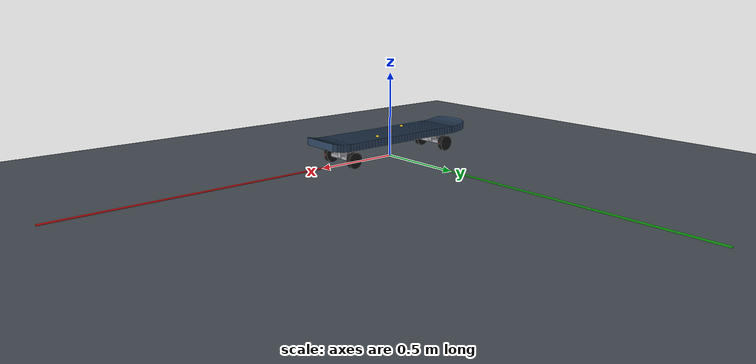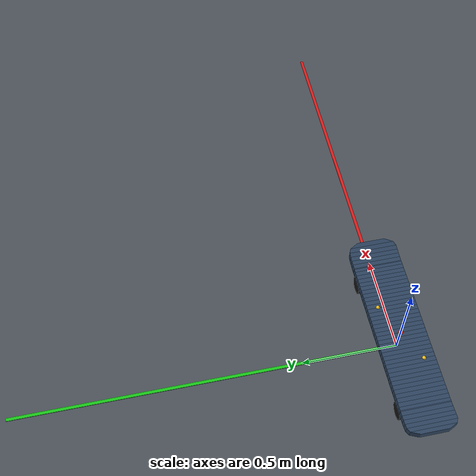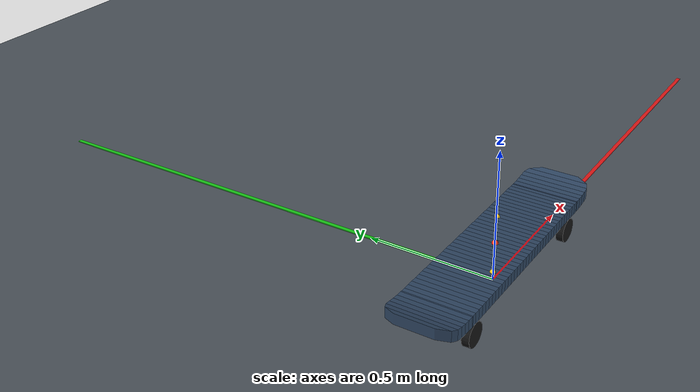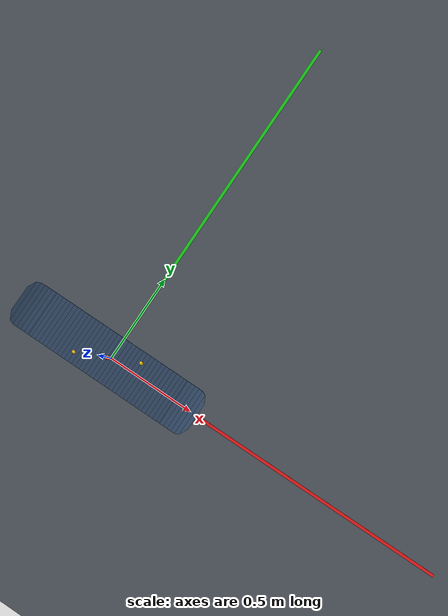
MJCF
<mujoco model="skate-sim-board-downhill-truck">
      <compiler angle="radian" coordinate="local"/>
      <option gravity="0 0 -9.81" integrator="implicitfast" timestep=".002"/>
      <visual><headlight diffuse=".8 .8 .8" ambient=".35 .35 .35"/></visual>
      <asset>
        <mesh name="deck_strip_0" vertex="-0.54 -0.0725000007 0.001 -0.54 -0.0725000007 0.043 -0.54 0.0725000007 0.001 -0.54 0.0725000007 0.043 -0.5175 -0.116870598 -0.00550318878 -0.5175 -0.116870598 0.0364968112 -0.5175 0.116870598 -0.00550318878 -0.5175 0.116870598 0.0364968112"/><mesh name="deck_strip_1" vertex="-0.5175 -0.116870598 -0.00550318878 -0.5175 -0.116870598 0.0364968112 -0.5175 0.116870598 -0.00550318878 -0.5175 0.116870598 0.0364968112 -0.495 -0.126583269 -0.010869898 -0.495 -0.126583269 0.031130102 -0.495 0.126583269 -0.010869898 -0.495 0.126583269 0.031130102"/><mesh name="deck_strip_2" vertex="-0.495 -0.126583269 -0.010869898 -0.495 -0.126583269 0.031130102 -0.495 0.126583269 -0.010869898 -0.495 0.126583269 0.031130102 -0.4725 -0.1275 -0.0151001276 -0.4725 -0.1275 0.0268998724 -0.4725 0.1275 -0.0151001276 -0.4725 0.1275 0.0268998724"/><mesh name="deck_strip_3" vertex="-0.4725 -0.1275 -0.0151001276 -0.4725 -0.1275 0.0268998724 -0.4725 0.1275 -0.0151001276 -0.4725 0.1275 0.0268998724 -0.45 -0.1275 -0.0181938776 -0.45 -0.1275 0.0238061224 -0.45 0.1275 -0.0181938776 -0.45 0.1275 0.0238061224"/><mesh name="deck_strip_4" vertex="-0.45 -0.1275 -0.0181938776 -0.45 -0.1275 0.0238061224 -0.45 0.1275 -0.0181938776 -0.45 0.1275 0.0238061224 -0.4275 -0.1275 -0.020151148 -0.4275 -0.1275 0.021848852 -0.4275 0.1275 -0.020151148 -0.4275 0.1275 0.021848852"/><mesh name="deck_strip_5" vertex="-0.4275 -0.1275 -0.020151148 -0.4275 -0.1275 0.021848852 -0.4275 0.1275 -0.020151148 -0.4275 0.1275 0.021848852 -0.405 -0.1275 -0.0209719388 -0.405 -0.1275 0.0210280612 -0.405 0.1275 -0.0209719388 -0.405 0.1275 0.0210280612"/><mesh name="deck_strip_6" vertex="-0.405 -0.1275 -0.0209719388 -0.405 -0.1275 0.0210280612 -0.405 0.1275 -0.0209719388 -0.405 0.1275 0.0210280612 -0.4 -0.1275 -0.021 -0.4 -0.1275 0.021 -0.4 0.1275 -0.021 -0.4 0.1275 0.021"/><mesh name="deck_strip_7" vertex="-0.4 -0.1275 -0.021 -0.4 -0.1275 0.021 -0.4 0.1275 -0.021 -0.4 0.1275 0.021 -0.3825 -0.1275 -0.021 -0.3825 -0.1275 0.021 -0.3825 0.1275 -0.021 -0.3825 0.1275 0.021"/><mesh name="deck_strip_8" vertex="-0.3825 -0.1275 -0.021 -0.3825 -0.1275 0.021 -0.3825 0.1275 -0.021 -0.3825 0.1275 0.021 -0.36 -0.1275 -0.021 -0.36 -0.1275 0.021 -0.36 0.1275 -0.021 -0.36 0.1275 0.021"/><mesh name="deck_strip_9" vertex="-0.36 -0.1275 -0.021 -0.36 -0.1275 0.021 -0.36 0.1275 -0.021 -0.36 0.1275 0.021 -0.3375 -0.1275 -0.021 -0.3375 -0.1275 0.021 -0.3375 0.1275 -0.021 -0.3375 0.1275 0.021"/><mesh name="deck_strip_10" vertex="-0.3375 -0.1275 -0.021 -0.3375 -0.1275 0.021 -0.3375 0.1275 -0.021 -0.3375 0.1275 0.021 -0.315 -0.1275 -0.021 -0.315 -0.1275 0.021 -0.315 0.1275 -0.021 -0.315 0.1275 0.021"/><mesh name="deck_strip_11" vertex="-0.315 -0.1275 -0.021 -0.315 -0.1275 0.021 -0.315 0.1275 -0.021 -0.315 0.1275 0.021 -0.2925 -0.1275 -0.021 -0.2925 -0.1275 0.021 -0.2925 0.1275 -0.021 -0.2925 0.1275 0.021"/><mesh name="deck_strip_12" vertex="-0.2925 -0.1275 -0.021 -0.2925 -0.1275 0.021 -0.2925 0.1275 -0.021 -0.2925 0.1275 0.021 -0.27 -0.1275 -0.021 -0.27 -0.1275 0.021 -0.27 0.1275 -0.021 -0.27 0.1275 0.021"/><mesh name="deck_strip_13" vertex="-0.27 -0.1275 -0.021 -0.27 -0.1275 0.021 -0.27 0.1275 -0.021 -0.27 0.1275 0.021 -0.2475 -0.1275 -0.021 -0.2475 -0.1275 0.021 -0.2475 0.1275 -0.021 -0.2475 0.1275 0.021"/><mesh name="deck_strip_14" vertex="-0.2475 -0.1275 -0.021 -0.2475 -0.1275 0.021 -0.2475 0.1275 -0.021 -0.2475 0.1275 0.021 -0.225 -0.1275 -0.021 -0.225 -0.1275 0.021 -0.225 0.1275 -0.021 -0.225 0.1275 0.021"/><mesh name="deck_strip_15" vertex="-0.225 -0.1275 -0.021 -0.225 -0.1275 0.021 -0.225 0.1275 -0.021 -0.225 0.1275 0.021 -0.2025 -0.1275 -0.021 -0.2025 -0.1275 0.021 -0.2025 0.1275 -0.021 -0.2025 0.1275 0.021"/><mesh name="deck_strip_16" vertex="-0.2025 -0.1275 -0.021 -0.2025 -0.1275 0.021 -0.2025 0.1275 -0.021 -0.2025 0.1275 0.021 -0.18 -0.1275 -0.021 -0.18 -0.1275 0.021 -0.18 0.1275 -0.021 -0.18 0.1275 0.021"/><mesh name="deck_strip_17" vertex="-0.18 -0.1275 -0.021 -0.18 -0.1275 0.021 -0.18 0.1275 -0.021 -0.18 0.1275 0.021 -0.1575 -0.1275 -0.021 -0.1575 -0.1275 0.021 -0.1575 0.1275 -0.021 -0.1575 0.1275 0.021"/><mesh name="deck_strip_18" vertex="-0.1575 -0.1275 -0.021 -0.1575 -0.1275 0.021 -0.1575 0.1275 -0.021 -0.1575 0.1275 0.021 -0.135 -0.1275 -0.021 -0.135 -0.1275 0.021 -0.135 0.1275 -0.021 -0.135 0.1275 0.021"/><mesh name="deck_strip_19" vertex="-0.135 -0.1275 -0.021 -0.135 -0.1275 0.021 -0.135 0.1275 -0.021 -0.135 0.1275 0.021 -0.1125 -0.1275 -0.021 -0.1125 -0.1275 0.021 -0.1125 0.1275 -0.021 -0.1125 0.1275 0.021"/><mesh name="deck_strip_20" vertex="-0.1125 -0.1275 -0.021 -0.1125 -0.1275 0.021 -0.1125 0.1275 -0.021 -0.1125 0.1275 0.021 -0.09 -0.1275 -0.021 -0.09 -0.1275 0.021 -0.09 0.1275 -0.021 -0.09 0.1275 0.021"/><mesh name="deck_strip_21" vertex="-0.09 -0.1275 -0.021 -0.09 -0.1275 0.021 -0.09 0.1275 -0.021 -0.09 0.1275 0.021 -0.0675 -0.1275 -0.021 -0.0675 -0.1275 0.021 -0.0675 0.1275 -0.021 -0.0675 0.1275 0.021"/><mesh name="deck_strip_22" vertex="-0.0675 -0.1275 -0.021 -0.0675 -0.1275 0.021 -0.0675 0.1275 -0.021 -0.0675 0.1275 0.021 -0.045 -0.1275 -0.021 -0.045 -0.1275 0.021 -0.045 0.1275 -0.021 -0.045 0.1275 0.021"/><mesh name="deck_strip_23" vertex="-0.045 -0.1275 -0.021 -0.045 -0.1275 0.021 -0.045 0.1275 -0.021 -0.045 0.1275 0.021 -0.0225 -0.1275 -0.021 -0.0225 -0.1275 0.021 -0.0225 0.1275 -0.021 -0.0225 0.1275 0.021"/><mesh name="deck_strip_24" vertex="-0.0225 -0.1275 -0.021 -0.0225 -0.1275 0.021 -0.0225 0.1275 -0.021 -0.0225 0.1275 0.021 0 -0.1275 -0.021 0 -0.1275 0.021 0 0.1275 -0.021 0 0.1275 0.021"/><mesh name="deck_strip_25" vertex="0 -0.1275 -0.021 0 -0.1275 0.021 0 0.1275 -0.021 0 0.1275 0.021 0.0225 -0.1275 -0.021 0.0225 -0.1275 0.021 0.0225 0.1275 -0.021 0.0225 0.1275 0.021"/><mesh name="deck_strip_26" vertex="0.0225 -0.1275 -0.021 0.0225 -0.1275 0.021 0.0225 0.1275 -0.021 0.0225 0.1275 0.021 0.045 -0.1275 -0.021 0.045 -0.1275 0.021 0.045 0.1275 -0.021 0.045 0.1275 0.021"/><mesh name="deck_strip_27" vertex="0.045 -0.1275 -0.021 0.045 -0.1275 0.021 0.045 0.1275 -0.021 0.045 0.1275 0.021 0.0675 -0.1275 -0.021 0.0675 -0.1275 0.021 0.0675 0.1275 -0.021 0.0675 0.1275 0.021"/><mesh name="deck_strip_28" vertex="0.0675 -0.1275 -0.021 0.0675 -0.1275 0.021 0.0675 0.1275 -0.021 0.0675 0.1275 0.021 0.09 -0.1275 -0.021 0.09 -0.1275 0.021 0.09 0.1275 -0.021 0.09 0.1275 0.021"/><mesh name="deck_strip_29" vertex="0.09 -0.1275 -0.021 0.09 -0.1275 0.021 0.09 0.1275 -0.021 0.09 0.1275 0.021 0.1125 -0.1275 -0.021 0.1125 -0.1275 0.021 0.1125 0.1275 -0.021 0.1125 0.1275 0.021"/><mesh name="deck_strip_30" vertex="0.1125 -0.1275 -0.021 0.1125 -0.1275 0.021 0.1125 0.1275 -0.021 0.1125 0.1275 0.021 0.135 -0.1275 -0.021 0.135 -0.1275 0.021 0.135 0.1275 -0.021 0.135 0.1275 0.021"/><mesh name="deck_strip_31" vertex="0.135 -0.1275 -0.021 0.135 -0.1275 0.021 0.135 0.1275 -0.021 0.135 0.1275 0.021 0.1575 -0.1275 -0.021 0.1575 -0.1275 0.021 0.1575 0.1275 -0.021 0.1575 0.1275 0.021"/><mesh name="deck_strip_32" vertex="0.1575 -0.1275 -0.021 0.1575 -0.1275 0.021 0.1575 0.1275 -0.021 0.1575 0.1275 0.021 0.18 -0.1275 -0.021 0.18 -0.1275 0.021 0.18 0.1275 -0.021 0.18 0.1275 0.021"/><mesh name="deck_strip_33" vertex="0.18 -0.1275 -0.021 0.18 -0.1275 0.021 0.18 0.1275 -0.021 0.18 0.1275 0.021 0.2025 -0.1275 -0.021 0.2025 -0.1275 0.021 0.2025 0.1275 -0.021 0.2025 0.1275 0.021"/><mesh name="deck_strip_34" vertex="0.2025 -0.1275 -0.021 0.2025 -0.1275 0.021 0.2025 0.1275 -0.021 0.2025 0.1275 0.021 0.225 -0.1275 -0.021 0.225 -0.1275 0.021 0.225 0.1275 -0.021 0.225 0.1275 0.021"/><mesh name="deck_strip_35" vertex="0.225 -0.1275 -0.021 0.225 -0.1275 0.021 0.225 0.1275 -0.021 0.225 0.1275 0.021 0.2475 -0.1275 -0.021 0.2475 -0.1275 0.021 0.2475 0.1275 -0.021 0.2475 0.1275 0.021"/><mesh name="deck_strip_36" vertex="0.2475 -0.1275 -0.021 0.2475 -0.1275 0.021 0.2475 0.1275 -0.021 0.2475 0.1275 0.021 0.27 -0.1275 -0.021 0.27 -0.1275 0.021 0.27 0.1275 -0.021 0.27 0.1275 0.021"/><mesh name="deck_strip_37" vertex="0.27 -0.1275 -0.021 0.27 -0.1275 0.021 0.27 0.1275 -0.021 0.27 0.1275 0.021 0.2925 -0.1275 -0.021 0.2925 -0.1275 0.021 0.2925 0.1275 -0.021 0.2925 0.1275 0.021"/><mesh name="deck_strip_38" vertex="0.2925 -0.1275 -0.021 0.2925 -0.1275 0.021 0.2925 0.1275 -0.021 0.2925 0.1275 0.021 0.315 -0.1275 -0.021 0.315 -0.1275 0.021 0.315 0.1275 -0.021 0.315 0.1275 0.021"/><mesh name="deck_strip_39" vertex="0.315 -0.1275 -0.021 0.315 -0.1275 0.021 0.315 0.1275 -0.021 0.315 0.1275 0.021 0.3375 -0.1275 -0.021 0.3375 -0.1275 0.021 0.3375 0.1275 -0.021 0.3375 0.1275 0.021"/><mesh name="deck_strip_40" vertex="0.3375 -0.1275 -0.021 0.3375 -0.1275 0.021 0.3375 0.1275 -0.021 0.3375 0.1275 0.021 0.36 -0.1275 -0.021 0.36 -0.1275 0.021 0.36 0.1275 -0.021 0.36 0.1275 0.021"/><mesh name="deck_strip_41" vertex="0.36 -0.1275 -0.021 0.36 -0.1275 0.021 0.36 0.1275 -0.021 0.36 0.1275 0.021 0.3825 -0.1275 -0.021 0.3825 -0.1275 0.021 0.3825 0.1275 -0.021 0.3825 0.1275 0.021"/><mesh name="deck_strip_42" vertex="0.3825 -0.1275 -0.021 0.3825 -0.1275 0.021 0.3825 0.1275 -0.021 0.3825 0.1275 0.021 0.4 -0.1275 -0.021 0.4 -0.1275 0.021 0.4 0.1275 -0.021 0.4 0.1275 0.021"/><mesh name="deck_strip_43" vertex="0.4 -0.1275 -0.021 0.4 -0.1275 0.021 0.4 0.1275 -0.021 0.4 0.1275 0.021 0.405 -0.1275 -0.0209719388 0.405 -0.1275 0.0210280612 0.405 0.1275 -0.0209719388 0.405 0.1275 0.0210280612"/><mesh name="deck_strip_44" vertex="0.405 -0.1275 -0.0209719388 0.405 -0.1275 0.0210280612 0.405 0.1275 -0.0209719388 0.405 0.1275 0.0210280612 0.4275 -0.1275 -0.020151148 0.4275 -0.1275 0.021848852 0.4275 0.1275 -0.020151148 0.4275 0.1275 0.021848852"/><mesh name="deck_strip_45" vertex="0.4275 -0.1275 -0.020151148 0.4275 -0.1275 0.021848852 0.4275 0.1275 -0.020151148 0.4275 0.1275 0.021848852 0.45 -0.1275 -0.0181938776 0.45 -0.1275 0.0238061224 0.45 0.1275 -0.0181938776 0.45 0.1275 0.0238061224"/><mesh name="deck_strip_46" vertex="0.45 -0.1275 -0.0181938776 0.45 -0.1275 0.0238061224 0.45 0.1275 -0.0181938776 0.45 0.1275 0.0238061224 0.4725 -0.1275 -0.0151001276 0.4725 -0.1275 0.0268998724 0.4725 0.1275 -0.0151001276 0.4725 0.1275 0.0268998724"/><mesh name="deck_strip_47" vertex="0.4725 -0.1275 -0.0151001276 0.4725 -0.1275 0.0268998724 0.4725 0.1275 -0.0151001276 0.4725 0.1275 0.0268998724 0.495 -0.126583269 -0.010869898 0.495 -0.126583269 0.031130102 0.495 0.126583269 -0.010869898 0.495 0.126583269 0.031130102"/><mesh name="deck_strip_48" vertex="0.495 -0.126583269 -0.010869898 0.495 -0.126583269 0.031130102 0.495 0.126583269 -0.010869898 0.495 0.126583269 0.031130102 0.5175 -0.116870598 -0.00550318878 0.5175 -0.116870598 0.0364968112 0.5175 0.116870598 -0.00550318878 0.5175 0.116870598 0.0364968112"/><mesh name="deck_strip_49" vertex="0.5175 -0.116870598 -0.00550318878 0.5175 -0.116870598 0.0364968112 0.5175 0.116870598 -0.00550318878 0.5175 0.116870598 0.0364968112 0.54 -0.0725000007 0.001 0.54 -0.0725000007 0.043 0.54 0.0725000007 0.001 0.54 0.0725000007 0.043"/>
        <texture name="grid" type="2d" builtin="checker" width="256" height="256" rgb1=".2 .23 .26" rgb2=".4 .43 .46"/>
        <material name="floor" texture="grid" texrepeat="10 10" texuniform="true"/>
        <mesh name="ramp" vertex="-.35 -.55 0 .35 -.55 0 -.35 .55 0 .35 .55 0 .35 -.55 .24 .35 .55 .24"/>
      </asset>
      <worldbody>
        <light name="key" pos="0 -2 4" directional="true"/>
        <geom name="ground" type="plane" size="5 5 .1" material="floor"/>
        <geom name="axis_x" type="box" pos="1 0 .002" size="1 .008 .002" rgba=".9 .1 .1 1" contype="0" conaffinity="0"/>
        <geom name="axis_y" type="box" pos="0 1 .002" size=".008 1 .002" rgba=".1 .8 .1 1" contype="0" conaffinity="0"/>

        <body name="deck" pos="0 0 0.126000" euler="0 0 0">
          <freejoint name="deck_free"/>
          <geom name="deck_collision" type="box" size="0.400000 0.127500 0.021000" mass="0" contype="0" conaffinity="0" rgba="0 0 0 0" group="5"/>
          <geom name="deck_strip_0" type="mesh" mesh="deck_strip_0" mass="0.0595514122197" rgba=".18 .27 .38 1"/><geom name="deck_strip_1" type="mesh" mesh="deck_strip_1" mass="0.0765589890639" rgba=".18 .27 .38 1"/><geom name="deck_strip_2" type="mesh" mesh="deck_strip_2" mass="0.0799016192354" rgba=".18 .27 .38 1"/><geom name="deck_strip_3" type="mesh" mesh="deck_strip_3" mass="0.0801899037848" rgba=".18 .27 .38 1"/><geom name="deck_strip_4" type="mesh" mesh="deck_strip_4" mass="0.0801899037848" rgba=".18 .27 .38 1"/><geom name="deck_strip_5" type="mesh" mesh="deck_strip_5" mass="0.0801899037848" rgba=".18 .27 .38 1"/><geom name="deck_strip_6" type="mesh" mesh="deck_strip_6" mass="0.0178199786188" rgba=".18 .27 .38 1"/><geom name="deck_strip_7" type="mesh" mesh="deck_strip_7" mass="0.062369925166" rgba=".18 .27 .38 1"/><geom name="deck_strip_8" type="mesh" mesh="deck_strip_8" mass="0.0801899037848" rgba=".18 .27 .38 1"/><geom name="deck_strip_9" type="mesh" mesh="deck_strip_9" mass="0.0801899037848" rgba=".18 .27 .38 1"/><geom name="deck_strip_10" type="mesh" mesh="deck_strip_10" mass="0.0801899037848" rgba=".18 .27 .38 1"/><geom name="deck_strip_11" type="mesh" mesh="deck_strip_11" mass="0.0801899037848" rgba=".18 .27 .38 1"/><geom name="deck_strip_12" type="mesh" mesh="deck_strip_12" mass="0.0801899037848" rgba=".18 .27 .38 1"/><geom name="deck_strip_13" type="mesh" mesh="deck_strip_13" mass="0.0801899037848" rgba=".18 .27 .38 1"/><geom name="deck_strip_14" type="mesh" mesh="deck_strip_14" mass="0.0801899037848" rgba=".18 .27 .38 1"/><geom name="deck_strip_15" type="mesh" mesh="deck_strip_15" mass="0.0801899037848" rgba=".18 .27 .38 1"/><geom name="deck_strip_16" type="mesh" mesh="deck_strip_16" mass="0.0801899037848" rgba=".18 .27 .38 1"/><geom name="deck_strip_17" type="mesh" mesh="deck_strip_17" mass="0.0801899037848" rgba=".18 .27 .38 1"/><geom name="deck_strip_18" type="mesh" mesh="deck_strip_18" mass="0.0801899037848" rgba=".18 .27 .38 1"/><geom name="deck_strip_19" type="mesh" mesh="deck_strip_19" mass="0.0801899037848" rgba=".18 .27 .38 1"/><geom name="deck_strip_20" type="mesh" mesh="deck_strip_20" mass="0.0801899037848" rgba=".18 .27 .38 1"/><geom name="deck_strip_21" type="mesh" mesh="deck_strip_21" mass="0.0801899037848" rgba=".18 .27 .38 1"/><geom name="deck_strip_22" type="mesh" mesh="deck_strip_22" mass="0.0801899037848" rgba=".18 .27 .38 1"/><geom name="deck_strip_23" type="mesh" mesh="deck_strip_23" mass="0.0801899037848" rgba=".18 .27 .38 1"/><geom name="deck_strip_24" type="mesh" mesh="deck_strip_24" mass="0.0801899037848" rgba=".18 .27 .38 1"/><geom name="deck_strip_25" type="mesh" mesh="deck_strip_25" mass="0.0801899037848" rgba=".18 .27 .38 1"/><geom name="deck_strip_26" type="mesh" mesh="deck_strip_26" mass="0.0801899037848" rgba=".18 .27 .38 1"/><geom name="deck_strip_27" type="mesh" mesh="deck_strip_27" mass="0.0801899037848" rgba=".18 .27 .38 1"/><geom name="deck_strip_28" type="mesh" mesh="deck_strip_28" mass="0.0801899037848" rgba=".18 .27 .38 1"/><geom name="deck_strip_29" type="mesh" mesh="deck_strip_29" mass="0.0801899037848" rgba=".18 .27 .38 1"/><geom name="deck_strip_30" type="mesh" mesh="deck_strip_30" mass="0.0801899037848" rgba=".18 .27 .38 1"/><geom name="deck_strip_31" type="mesh" mesh="deck_strip_31" mass="0.0801899037848" rgba=".18 .27 .38 1"/><geom name="deck_strip_32" type="mesh" mesh="deck_strip_32" mass="0.0801899037848" rgba=".18 .27 .38 1"/><geom name="deck_strip_33" type="mesh" mesh="deck_strip_33" mass="0.0801899037848" rgba=".18 .27 .38 1"/><geom name="deck_strip_34" type="mesh" mesh="deck_strip_34" mass="0.0801899037848" rgba=".18 .27 .38 1"/><geom name="deck_strip_35" type="mesh" mesh="deck_strip_35" mass="0.0801899037848" rgba=".18 .27 .38 1"/><geom name="deck_strip_36" type="mesh" mesh="deck_strip_36" mass="0.0801899037848" rgba=".18 .27 .38 1"/><geom name="deck_strip_37" type="mesh" mesh="deck_strip_37" mass="0.0801899037848" rgba=".18 .27 .38 1"/><geom name="deck_strip_38" type="mesh" mesh="deck_strip_38" mass="0.0801899037848" rgba=".18 .27 .38 1"/><geom name="deck_strip_39" type="mesh" mesh="deck_strip_39" mass="0.0801899037848" rgba=".18 .27 .38 1"/><geom name="deck_strip_40" type="mesh" mesh="deck_strip_40" mass="0.0801899037848" rgba=".18 .27 .38 1"/><geom name="deck_strip_41" type="mesh" mesh="deck_strip_41" mass="0.0801899037848" rgba=".18 .27 .38 1"/><geom name="deck_strip_42" type="mesh" mesh="deck_strip_42" mass="0.062369925166" rgba=".18 .27 .38 1"/><geom name="deck_strip_43" type="mesh" mesh="deck_strip_43" mass="0.0178199786188" rgba=".18 .27 .38 1"/><geom name="deck_strip_44" type="mesh" mesh="deck_strip_44" mass="0.0801899037848" rgba=".18 .27 .38 1"/><geom name="deck_strip_45" type="mesh" mesh="deck_strip_45" mass="0.0801899037848" rgba=".18 .27 .38 1"/><geom name="deck_strip_46" type="mesh" mesh="deck_strip_46" mass="0.0801899037848" rgba=".18 .27 .38 1"/><geom name="deck_strip_47" type="mesh" mesh="deck_strip_47" mass="0.0799016192354" rgba=".18 .27 .38 1"/><geom name="deck_strip_48" type="mesh" mesh="deck_strip_48" mass="0.0765589890639" rgba=".18 .27 .38 1"/><geom name="deck_strip_49" type="mesh" mesh="deck_strip_49" mass="0.0595514122197" rgba=".18 .27 .38 1"/>
          <site name="deck_top" pos="0 0 0.021000" size=".012" rgba="1 .2 .1 1"/>
          <site name="left_foot_anchor" pos="0.158400 0.071400 0.021000" size=".01" rgba="1 .8 .1 1"/>
          <site name="right_foot_anchor" pos="-0.158400 -0.071400 0.021000" size=".01" rgba="1 .8 .1 1"/>
          <body name="front_truck" pos="0.360000 0 -0.021000">
          <joint name="front_truck_tilt" type="hinge" axis="0.7071068967259818 0 0.7071066656470943" range="-0.35 0.35" stiffness="2.8" damping="0.12"/>
          <geom name="front_truck_collision" type="box" pos="0 0 -.030" size=".025 .012 .030" mass="0.204000" rgba=".65 .65 .68 1"/>
          <geom name="front_axle_collision" type="box" pos="0 0 -.060" size=".012 0.091000 .010" mass="0.136000" rgba=".65 .65 .68 1"/>
          <site name="front_truck_pivot" size=".005" rgba="1 .3 1 1"/>
           <site name="front_truck_axis" type="capsule" fromto="0 0 0 0.06363962070533837 0 0.06363959990823849" size=".002" rgba="1 .3 1 1" group="3"/>
          <body name="front_left" pos="0 0.105000 -0.060000">
      <joint name="front_left_spin" type="hinge" axis="0 1 0" damping=".02"/>
      <geom name="front_left_collision" type="cylinder" fromto="0 -0.014000 0 0 0.014000 0" size="0.045000" mass="0.140000" rgba=".08 .08 .08 1"/>
      <site name="front_left_axle" pos="0 0 0" size=".006" rgba="1 1 0 1"/>
      <site name="front_left_axis" type="capsule" fromto="0 -.04 0 0 .04 0" size=".002" rgba="1 1 0 1" group="3"/>
      <site name="front_left_marker" pos="0.045000 0 0" size=".004" rgba="1 .2 .1 1"/>
    </body><body name="front_right" pos="0 -0.105000 -0.060000">
      <joint name="front_right_spin" type="hinge" axis="0 1 0" damping=".02"/>
      <geom name="front_right_collision" type="cylinder" fromto="0 -0.014000 0 0 0.014000 0" size="0.045000" mass="0.140000" rgba=".08 .08 .08 1"/>
      <site name="front_right_axle" pos="0 0 0" size=".006" rgba="1 1 0 1"/>
      <site name="front_right_axis" type="capsule" fromto="0 -.04 0 0 .04 0" size=".002" rgba="1 1 0 1" group="3"/>
      <site name="front_right_marker" pos="0.045000 0 0" size=".004" rgba="1 .2 .1 1"/>
    </body>
        </body><body name="rear_truck" pos="-0.360000 0 -0.021000">
          <joint name="rear_truck_tilt" type="hinge" axis="0.7071068967259818 0 -0.7071066656470943" range="-0.35 0.35" stiffness="2.8" damping="0.12"/>
          <geom name="rear_truck_collision" type="box" pos="0 0 -.030" size=".025 .012 .030" mass="0.204000" rgba=".65 .65 .68 1"/>
          <geom name="rear_axle_collision" type="box" pos="0 0 -.060" size=".012 0.091000 .010" mass="0.136000" rgba=".65 .65 .68 1"/>
          <site name="rear_truck_pivot" size=".005" rgba="1 .3 1 1"/>
           <site name="rear_truck_axis" type="capsule" fromto="0 0 0 0.06363962070533837 0 -0.06363959990823849" size=".002" rgba="1 .3 1 1" group="3"/>
          <body name="rear_left" pos="0 0.105000 -0.060000">
      <joint name="rear_left_spin" type="hinge" axis="0 1 0" damping=".02"/>
      <geom name="rear_left_collision" type="cylinder" fromto="0 -0.014000 0 0 0.014000 0" size="0.045000" mass="0.140000" rgba=".08 .08 .08 1"/>
      <site name="rear_left_axle" pos="0 0 0" size=".006" rgba="1 1 0 1"/>
      <site name="rear_left_axis" type="capsule" fromto="0 -.04 0 0 .04 0" size=".002" rgba="1 1 0 1" group="3"/>
      <site name="rear_left_marker" pos="0.045000 0 0" size=".004" rgba="1 .2 .1 1"/>
    </body><body name="rear_right" pos="0 -0.105000 -0.060000">
      <joint name="rear_right_spin" type="hinge" axis="0 1 0" damping=".02"/>
      <geom name="rear_right_collision" type="cylinder" fromto="0 -0.014000 0 0 0.014000 0" size="0.045000" mass="0.140000" rgba=".08 .08 .08 1"/>
      <site name="rear_right_axle" pos="0 0 0" size=".006" rgba="1 1 0 1"/>
      <site name="rear_right_axis" type="capsule" fromto="0 -.04 0 0 .04 0" size=".002" rgba="1 1 0 1" group="3"/>
      <site name="rear_right_marker" pos="0.045000 0 0" size=".004" rgba="1 .2 .1 1"/>
    </body>
        </body>
        </body>
      </worldbody>
    </mujoco>
